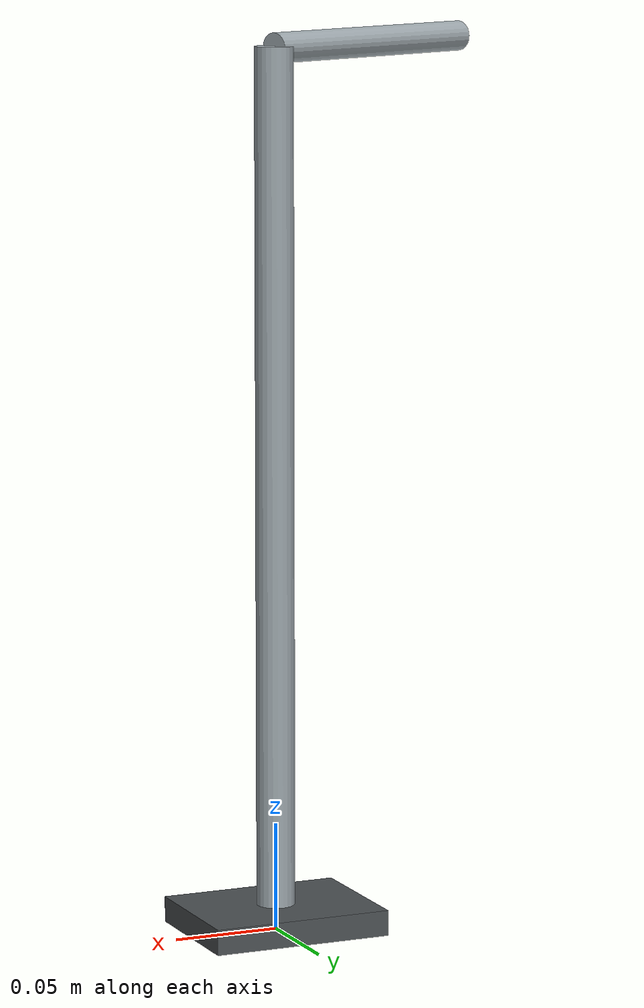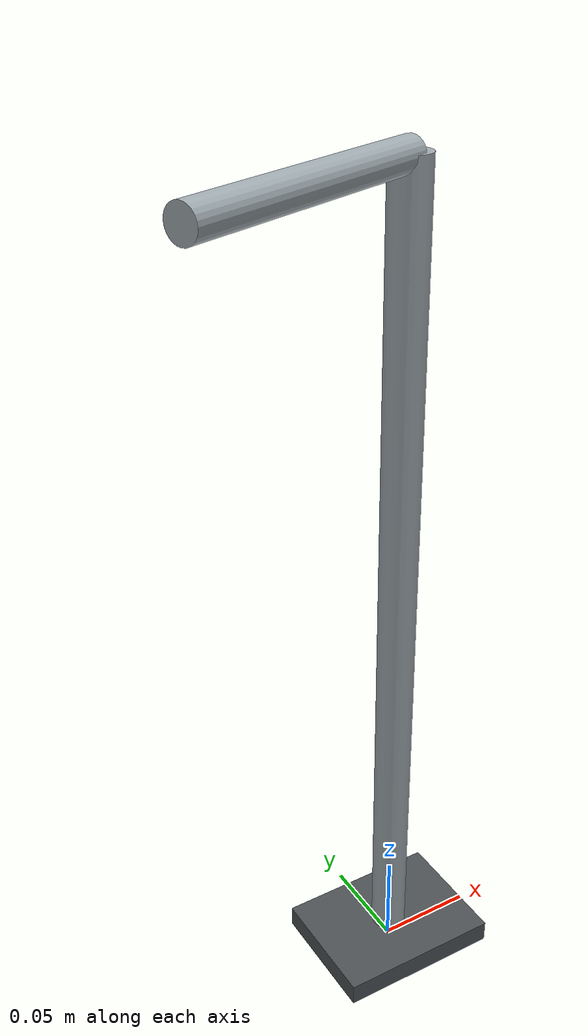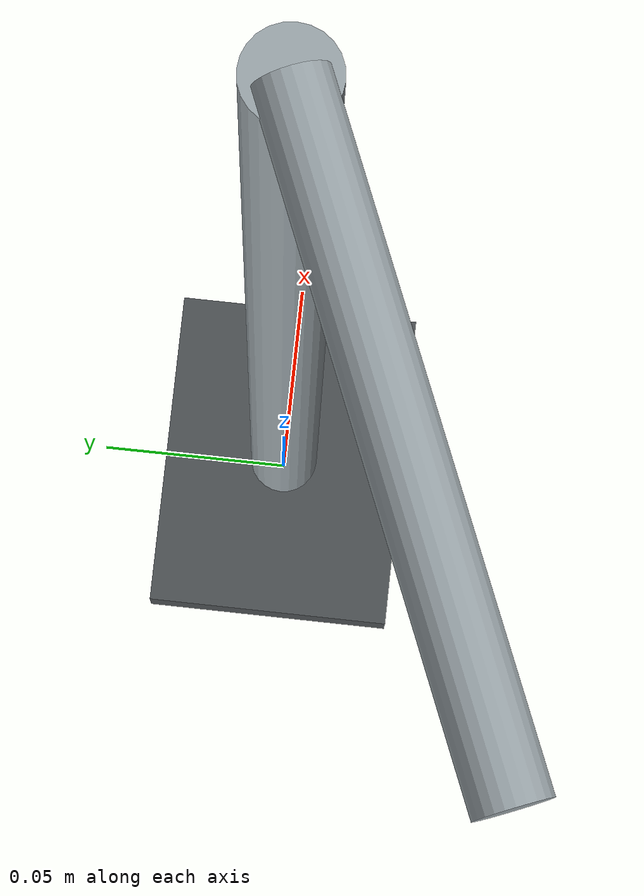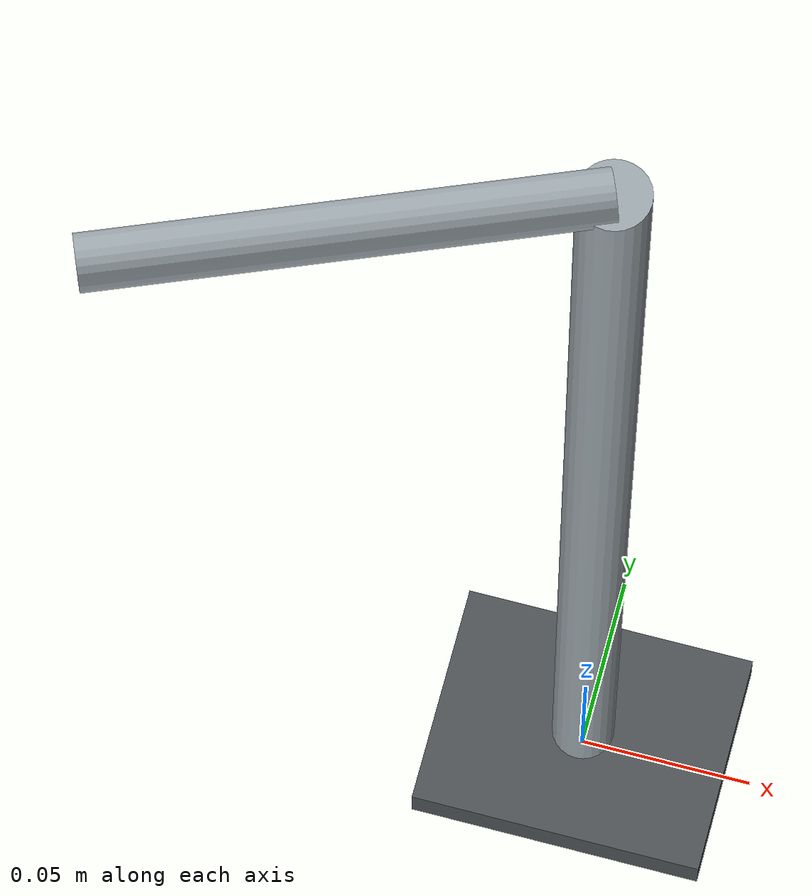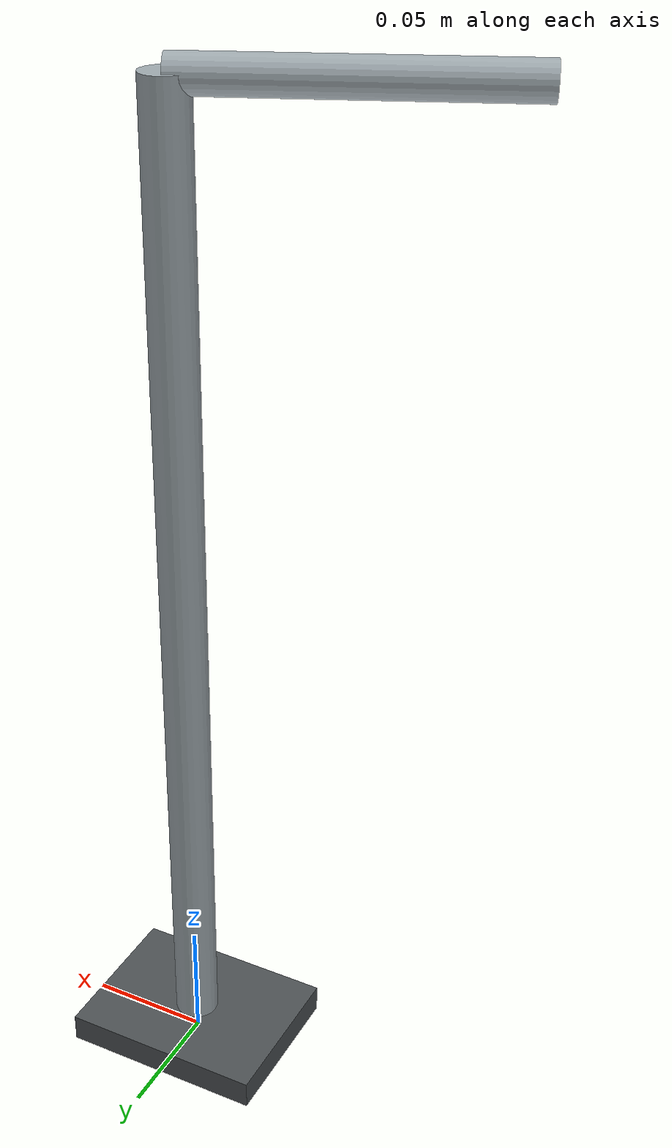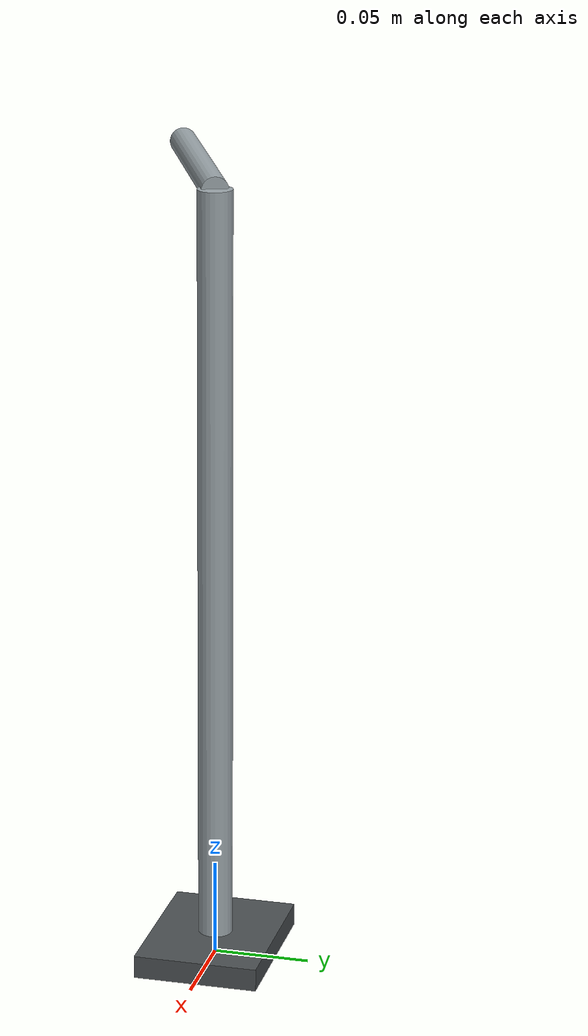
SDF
<?xml version="1.0"?>
<sdf version="1.9">
  <model name="d435_stand_only">
    <static>true</static>

    <link name="stand_link">
      <visual name="tabletop_base_visual">
        <pose>0 0 0.006 0 0 0</pose>
        <geometry>
          <box>
            <size>0.085 0.065 0.012</size>
          </box>
        </geometry>
        <material>
          <ambient>0.18 0.19 0.20 1</ambient>
          <diffuse>0.30 0.32 0.33 1</diffuse>
          <specular>0.25 0.25 0.25 1</specular>
        </material>
      </visual>
      <collision name="tabletop_base_collision">
        <pose>0 0 0.006 0 0 0</pose>
        <geometry>
          <box>
            <size>0.085 0.065 0.012</size>
          </box>
        </geometry>
      </collision>

      <visual name="short_pole_visual">
        <pose>0 0 0.207 0 0 0</pose>
        <geometry>
          <cylinder>
            <radius>0.009</radius>
            <length>0.405</length>
          </cylinder>
        </geometry>
        <material>
          <ambient>0.45 0.48 0.50 1</ambient>
          <diffuse>0.62 0.66 0.68 1</diffuse>
          <specular>0.35 0.35 0.35 1</specular>
        </material>
      </visual>
      <collision name="short_pole_collision">
        <pose>0 0 0.207 0 0 0</pose>
        <geometry>
          <cylinder>
            <radius>0.009</radius>
            <length>0.405</length>
          </cylinder>
        </geometry>
      </collision>

      <visual name="short_support_arm_visual">
        <pose>-0.0573 -0.0237 0.4086 0 1.5708 -2.7485</pose>
        <geometry>
          <cylinder>
            <radius>0.007</radius>
            <length>0.124</length>
          </cylinder>
        </geometry>
        <material>
          <ambient>0.45 0.48 0.50 1</ambient>
          <diffuse>0.62 0.66 0.68 1</diffuse>
          <specular>0.35 0.35 0.35 1</specular>
        </material>
      </visual>
      <collision name="short_support_arm_collision">
        <pose>-0.0573 -0.0237 0.4086 0 1.5708 -2.7485</pose>
        <geometry>
          <cylinder>
            <radius>0.007</radius>
            <length>0.124</length>
          </cylinder>
        </geometry>
      </collision>
    </link>
  </model>
</sdf>
